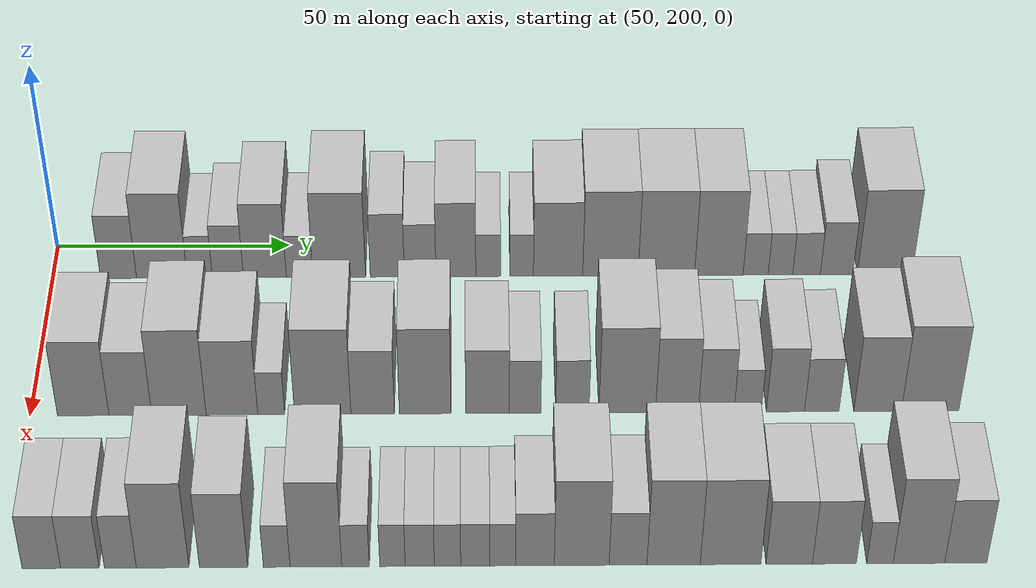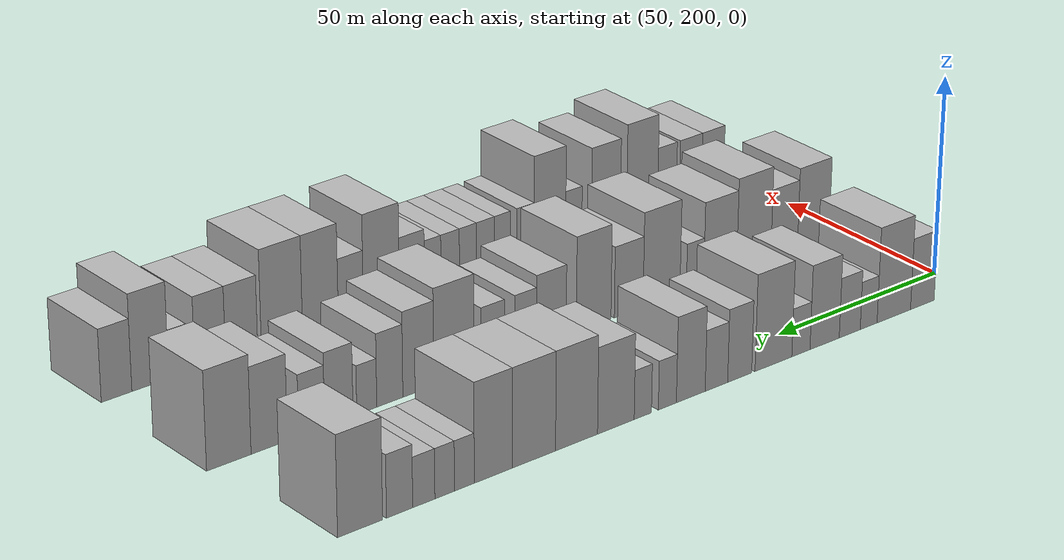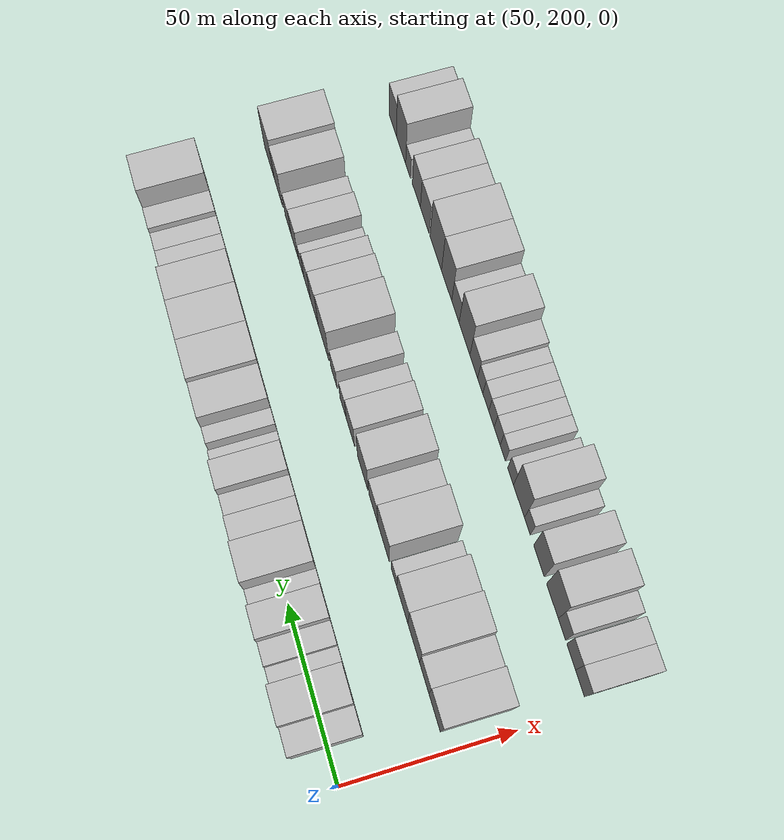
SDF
<sdf version="1.6">
 <world name="default">
  <model name="building_66">
   <static>1</static>
   <pose>50.0000 214.0781 0 0.000000 0.000000 0.000000</pose>
   <link name="link">
    <pose>0 0 9.00 0 0 0</pose>
    <collision name="collision"><geometry><box><size>20.0000 7.6714 18.0000</size></box></geometry></collision>
    <visual name="visual">
     <cast_shadows>0</cast_shadows>
     <geometry><box><size>20.0000 7.6714 18.0000</size></box></geometry>
     <material>
      <script>
       <uri>model://HANNAS_wall/materials/scripts</uri>
       <uri>model://HANNAS_wall/materials/textures</uri>
       <name>vrc/HANNAS_wall</name>
      </script>
     </material>
    </visual>
   </link>
  </model>
  <model name="building_67">
   <static>1</static>
   <pose>50.0000 223.2891 0 0.000000 0.000000 0.000000</pose>
   <link name="link">
    <pose>0 0 12.00 0 0 0</pose>
    <collision name="collision"><geometry><box><size>20.0000 10.7506 24.0000</size></box></geometry></collision>
    <visual name="visual">
     <cast_shadows>0</cast_shadows>
     <geometry><box><size>20.0000 10.7506 24.0000</size></box></geometry>
     <material>
      <script>
       <uri>model://HANNAS_wall/materials/scripts</uri>
       <uri>model://HANNAS_wall/materials/textures</uri>
       <name>vrc/HANNAS_wall</name>
      </script>
     </material>
    </visual>
   </link>
  </model>
  <model name="building_68">
   <static>1</static>
   <pose>50.0000 231.3365 0 0.000000 0.000000 0.000000</pose>
   <link name="link">
    <pose>0 0 6.00 0 0 0</pose>
    <collision name="collision"><geometry><box><size>20.0000 5.3441 12.0000</size></box></geometry></collision>
    <visual name="visual">
     <cast_shadows>0</cast_shadows>
     <geometry><box><size>20.0000 5.3441 12.0000</size></box></geometry>
     <material>
      <script>
       <uri>model://HANNAS_wall/materials/scripts</uri>
       <uri>model://HANNAS_wall/materials/textures</uri>
       <name>vrc/HANNAS_wall</name>
      </script>
     </material>
    </visual>
   </link>
  </model>
  <model name="building_69">
   <static>1</static>
   <pose>50.0000 237.3192 0 0.000000 0.000000 0.000000</pose>
   <link name="link">
    <pose>0 0 7.50 0 0 0</pose>
    <collision name="collision"><geometry><box><size>20.0000 6.6214 15.0000</size></box></geometry></collision>
    <visual name="visual">
     <cast_shadows>0</cast_shadows>
     <geometry><box><size>20.0000 6.6214 15.0000</size></box></geometry>
     <material>
      <script>
       <uri>model://HANNAS_wall/materials/scripts</uri>
       <uri>model://HANNAS_wall/materials/textures</uri>
       <name>vrc/HANNAS_wall</name>
      </script>
     </material>
    </visual>
   </link>
  </model>
  <model name="building_70">
   <static>1</static>
   <pose>50.0000 245.1917 0 0.000000 0.000000 0.000000</pose>
   <link name="link">
    <pose>0 0 10.50 0 0 0</pose>
    <collision name="collision"><geometry><box><size>20.0000 9.1236 21.0000</size></box></geometry></collision>
    <visual name="visual">
     <cast_shadows>0</cast_shadows>
     <geometry><box><size>20.0000 9.1236 21.0000</size></box></geometry>
     <material>
      <script>
       <uri>model://HANNAS_wall/materials/scripts</uri>
       <uri>model://HANNAS_wall/materials/textures</uri>
       <name>vrc/HANNAS_wall</name>
      </script>
     </material>
    </visual>
   </link>
  </model>
  <model name="building_71">
   <static>1</static>
   <pose>50.0000 252.5566 0 0.000000 0.000000 0.000000</pose>
   <link name="link">
    <pose>0 0 6.00 0 0 0</pose>
    <collision name="collision"><geometry><box><size>20.0000 5.6062 12.0000</size></box></geometry></collision>
    <visual name="visual">
     <cast_shadows>0</cast_shadows>
     <geometry><box><size>20.0000 5.6062 12.0000</size></box></geometry>
     <material>
      <script>
       <uri>model://HANNAS_wall/materials/scripts</uri>
       <uri>model://HANNAS_wall/materials/textures</uri>
       <name>vrc/HANNAS_wall</name>
      </script>
     </material>
    </visual>
   </link>
  </model>
  <model name="building_72">
   <static>1</static>
   <pose>50.0000 260.9833 0 0.000000 0.000000 0.000000</pose>
   <link name="link">
    <pose>0 0 12.00 0 0 0</pose>
    <collision name="collision"><geometry><box><size>20.0000 11.2474 24.0000</size></box></geometry></collision>
    <visual name="visual">
     <cast_shadows>0</cast_shadows>
     <geometry><box><size>20.0000 11.2474 24.0000</size></box></geometry>
     <material>
      <script>
       <uri>model://HANNAS_wall/materials/scripts</uri>
       <uri>model://HANNAS_wall/materials/textures</uri>
       <name>vrc/HANNAS_wall</name>
      </script>
     </material>
    </visual>
   </link>
  </model>
  <model name="building_73">
   <static>1</static>
   <pose>50.0000 271.2235 0 0.000000 0.000000 0.000000</pose>
   <link name="link">
    <pose>0 0 9.00 0 0 0</pose>
    <collision name="collision"><geometry><box><size>20.0000 7.2329 18.0000</size></box></geometry></collision>
    <visual name="visual">
     <cast_shadows>0</cast_shadows>
     <geometry><box><size>20.0000 7.2329 18.0000</size></box></geometry>
     <material>
      <script>
       <uri>model://HANNAS_wall/materials/scripts</uri>
       <uri>model://HANNAS_wall/materials/textures</uri>
       <name>vrc/HANNAS_wall</name>
      </script>
     </material>
    </visual>
   </link>
  </model>
  <model name="building_74">
   <static>1</static>
   <pose>50.0000 278.1949 0 0.000000 0.000000 0.000000</pose>
   <link name="link">
    <pose>0 0 7.50 0 0 0</pose>
    <collision name="collision"><geometry><box><size>20.0000 6.7098 15.0000</size></box></geometry></collision>
    <visual name="visual">
     <cast_shadows>0</cast_shadows>
     <geometry><box><size>20.0000 6.7098 15.0000</size></box></geometry>
     <material>
      <script>
       <uri>model://HANNAS_wall/materials/scripts</uri>
       <uri>model://HANNAS_wall/materials/textures</uri>
       <name>vrc/HANNAS_wall</name>
      </script>
     </material>
    </visual>
   </link>
  </model>
  <model name="building_75">
   <static>1</static>
   <pose>50.0000 285.7951 0 0.000000 0.000000 0.000000</pose>
   <link name="link">
    <pose>0 0 10.50 0 0 0</pose>
    <collision name="collision"><geometry><box><size>20.0000 8.4907 21.0000</size></box></geometry></collision>
    <visual name="visual">
     <cast_shadows>0</cast_shadows>
     <geometry><box><size>20.0000 8.4907 21.0000</size></box></geometry>
     <material>
      <script>
       <uri>model://HANNAS_wall/materials/scripts</uri>
       <uri>model://HANNAS_wall/materials/textures</uri>
       <name>vrc/HANNAS_wall</name>
      </script>
     </material>
    </visual>
   </link>
  </model>
  <model name="building_76">
   <static>1</static>
   <pose>50.0000 292.6729 0 0.000000 0.000000 0.000000</pose>
   <link name="link">
    <pose>0 0 6.00 0 0 0</pose>
    <collision name="collision"><geometry><box><size>20.0000 5.2649 12.0000</size></box></geometry></collision>
    <visual name="visual">
     <cast_shadows>0</cast_shadows>
     <geometry><box><size>20.0000 5.2649 12.0000</size></box></geometry>
     <material>
      <script>
       <uri>model://HANNAS_wall/materials/scripts</uri>
       <uri>model://HANNAS_wall/materials/textures</uri>
       <name>vrc/HANNAS_wall</name>
      </script>
     </material>
    </visual>
   </link>
  </model>
  <model name="building_77">
   <static>1</static>
   <pose>50.0000 299.8069 0 0.000000 0.000000 0.000000</pose>
   <link name="link">
    <pose>0 0 6.00 0 0 0</pose>
    <collision name="collision"><geometry><box><size>20.0000 5.0031 12.0000</size></box></geometry></collision>
    <visual name="visual">
     <cast_shadows>0</cast_shadows>
     <geometry><box><size>20.0000 5.0031 12.0000</size></box></geometry>
     <material>
      <script>
       <uri>model://HANNAS_wall/materials/scripts</uri>
       <uri>model://HANNAS_wall/materials/textures</uri>
       <name>vrc/HANNAS_wall</name>
      </script>
     </material>
    </visual>
   </link>
  </model>
  <model name="building_78">
   <static>1</static>
   <pose>50.0000 307.5530 0 0.000000 0.000000 0.000000</pose>
   <link name="link">
    <pose>0 0 10.50 0 0 0</pose>
    <collision name="collision"><geometry><box><size>20.0000 10.4891 21.0000</size></box></geometry></collision>
    <visual name="visual">
     <cast_shadows>0</cast_shadows>
     <geometry><box><size>20.0000 10.4891 21.0000</size></box></geometry>
     <material>
      <script>
       <uri>model://HANNAS_wall/materials/scripts</uri>
       <uri>model://HANNAS_wall/materials/textures</uri>
       <name>vrc/HANNAS_wall</name>
      </script>
     </material>
    </visual>
   </link>
  </model>
  <model name="building_79">
   <static>1</static>
   <pose>50.0000 318.7079 0 0.000000 0.000000 0.000000</pose>
   <link name="link">
    <pose>0 0 12.00 0 0 0</pose>
    <collision name="collision"><geometry><box><size>20.0000 11.8206 24.0000</size></box></geometry></collision>
    <visual name="visual">
     <cast_shadows>0</cast_shadows>
     <geometry><box><size>20.0000 11.8206 24.0000</size></box></geometry>
     <material>
      <script>
       <uri>model://HANNAS_wall/materials/scripts</uri>
       <uri>model://HANNAS_wall/materials/textures</uri>
       <name>vrc/HANNAS_wall</name>
      </script>
     </material>
    </visual>
   </link>
  </model>
  <model name="building_80">
   <static>1</static>
   <pose>50.0000 330.6133 0 0.000000 0.000000 0.000000</pose>
   <link name="link">
    <pose>0 0 12.00 0 0 0</pose>
    <collision name="collision"><geometry><box><size>20.0000 11.9901 24.0000</size></box></geometry></collision>
    <visual name="visual">
     <cast_shadows>0</cast_shadows>
     <geometry><box><size>20.0000 11.9901 24.0000</size></box></geometry>
     <material>
      <script>
       <uri>model://HANNAS_wall/materials/scripts</uri>
       <uri>model://HANNAS_wall/materials/textures</uri>
       <name>vrc/HANNAS_wall</name>
      </script>
     </material>
    </visual>
   </link>
  </model>
  <model name="building_81">
   <static>1</static>
   <pose>50.0000 341.7887 0 0.000000 0.000000 0.000000</pose>
   <link name="link">
    <pose>0 0 12.00 0 0 0</pose>
    <collision name="collision"><geometry><box><size>20.0000 10.3607 24.0000</size></box></geometry></collision>
    <visual name="visual">
     <cast_shadows>0</cast_shadows>
     <geometry><box><size>20.0000 10.3607 24.0000</size></box></geometry>
     <material>
      <script>
       <uri>model://HANNAS_wall/materials/scripts</uri>
       <uri>model://HANNAS_wall/materials/textures</uri>
       <name>vrc/HANNAS_wall</name>
      </script>
     </material>
    </visual>
   </link>
  </model>
  <model name="building_82">
   <static>1</static>
   <pose>50.0000 349.6413 0 0.000000 0.000000 0.000000</pose>
   <link name="link">
    <pose>0 0 6.00 0 0 0</pose>
    <collision name="collision"><geometry><box><size>20.0000 5.3445 12.0000</size></box></geometry></collision>
    <visual name="visual">
     <cast_shadows>0</cast_shadows>
     <geometry><box><size>20.0000 5.3445 12.0000</size></box></geometry>
     <material>
      <script>
       <uri>model://HANNAS_wall/materials/scripts</uri>
       <uri>model://HANNAS_wall/materials/textures</uri>
       <name>vrc/HANNAS_wall</name>
      </script>
     </material>
    </visual>
   </link>
  </model>
  <model name="building_83">
   <static>1</static>
   <pose>50.0000 354.9262 0 0.000000 0.000000 0.000000</pose>
   <link name="link">
    <pose>0 0 6.00 0 0 0</pose>
    <collision name="collision"><geometry><box><size>20.0000 5.2252 12.0000</size></box></geometry></collision>
    <visual name="visual">
     <cast_shadows>0</cast_shadows>
     <geometry><box><size>20.0000 5.2252 12.0000</size></box></geometry>
     <material>
      <script>
       <uri>model://HANNAS_wall/materials/scripts</uri>
       <uri>model://HANNAS_wall/materials/textures</uri>
       <name>vrc/HANNAS_wall</name>
      </script>
     </material>
    </visual>
   </link>
  </model>
  <model name="building_84">
   <static>1</static>
   <pose>50.0000 360.4832 0 0.000000 0.000000 0.000000</pose>
   <link name="link">
    <pose>0 0 6.00 0 0 0</pose>
    <collision name="collision"><geometry><box><size>20.0000 5.8889 12.0000</size></box></geometry></collision>
    <visual name="visual">
     <cast_shadows>0</cast_shadows>
     <geometry><box><size>20.0000 5.8889 12.0000</size></box></geometry>
     <material>
      <script>
       <uri>model://HANNAS_wall/materials/scripts</uri>
       <uri>model://HANNAS_wall/materials/textures</uri>
       <name>vrc/HANNAS_wall</name>
      </script>
     </material>
    </visual>
   </link>
  </model>
  <model name="building_85">
   <static>1</static>
   <pose>50.0000 366.8766 0 0.000000 0.000000 0.000000</pose>
   <link name="link">
    <pose>0 0 7.50 0 0 0</pose>
    <collision name="collision"><geometry><box><size>20.0000 6.8979 15.0000</size></box></geometry></collision>
    <visual name="visual">
     <cast_shadows>0</cast_shadows>
     <geometry><box><size>20.0000 6.8979 15.0000</size></box></geometry>
     <material>
      <script>
       <uri>model://HANNAS_wall/materials/scripts</uri>
       <uri>model://HANNAS_wall/materials/textures</uri>
       <name>vrc/HANNAS_wall</name>
      </script>
     </material>
    </visual>
   </link>
  </model>
  <model name="building_86">
   <static>1</static>
   <pose>50.0000 377.1571 0 0.000000 0.000000 0.000000</pose>
   <link name="link">
    <pose>0 0 12.00 0 0 0</pose>
    <collision name="collision"><geometry><box><size>20.0000 11.6630 24.0000</size></box></geometry></collision>
    <visual name="visual">
     <cast_shadows>0</cast_shadows>
     <geometry><box><size>20.0000 11.6630 24.0000</size></box></geometry>
     <material>
      <script>
       <uri>model://HANNAS_wall/materials/scripts</uri>
       <uri>model://HANNAS_wall/materials/textures</uri>
       <name>vrc/HANNAS_wall</name>
      </script>
     </material>
    </visual>
   </link>
  </model>
  <model name="building_149">
   <static>1</static>
   <pose>90.0000 210.7313 0 0.000000 0.000000 0.000000</pose>
   <link name="link">
    <pose>0 0 10.50 0 0 0</pose>
    <collision name="collision"><geometry><box><size>20.0000 10.3933 21.0000</size></box></geometry></collision>
    <visual name="visual">
     <cast_shadows>0</cast_shadows>
     <geometry><box><size>20.0000 10.3933 21.0000</size></box></geometry>
     <material>
      <script>
       <uri>model://HANNAS_wall/materials/scripts</uri>
       <uri>model://HANNAS_wall/materials/textures</uri>
       <name>vrc/HANNAS_wall</name>
      </script>
     </material>
    </visual>
   </link>
  </model>
  <model name="building_150">
   <static>1</static>
   <pose>90.0000 220.2506 0 0.000000 0.000000 0.000000</pose>
   <link name="link">
    <pose>0 0 9.00 0 0 0</pose>
    <collision name="collision"><geometry><box><size>20.0000 8.6453 18.0000</size></box></geometry></collision>
    <visual name="visual">
     <cast_shadows>0</cast_shadows>
     <geometry><box><size>20.0000 8.6453 18.0000</size></box></geometry>
     <material>
      <script>
       <uri>model://HANNAS_wall/materials/scripts</uri>
       <uri>model://HANNAS_wall/materials/textures</uri>
       <name>vrc/HANNAS_wall</name>
      </script>
     </material>
    </visual>
   </link>
  </model>
  <model name="building_151">
   <static>1</static>
   <pose>90.0000 230.0540 0 0.000000 0.000000 0.000000</pose>
   <link name="link">
    <pose>0 0 12.00 0 0 0</pose>
    <collision name="collision"><geometry><box><size>20.0000 10.9616 24.0000</size></box></geometry></collision>
    <visual name="visual">
     <cast_shadows>0</cast_shadows>
     <geometry><box><size>20.0000 10.9616 24.0000</size></box></geometry>
     <material>
      <script>
       <uri>model://HANNAS_wall/materials/scripts</uri>
       <uri>model://HANNAS_wall/materials/textures</uri>
       <name>vrc/HANNAS_wall</name>
      </script>
     </material>
    </visual>
   </link>
  </model>
  <model name="building_152">
   <static>1</static>
   <pose>90.0000 240.7411 0 0.000000 0.000000 0.000000</pose>
   <link name="link">
    <pose>0 0 10.50 0 0 0</pose>
    <collision name="collision"><geometry><box><size>20.0000 10.4127 21.0000</size></box></geometry></collision>
    <visual name="visual">
     <cast_shadows>0</cast_shadows>
     <geometry><box><size>20.0000 10.4127 21.0000</size></box></geometry>
     <material>
      <script>
       <uri>model://HANNAS_wall/materials/scripts</uri>
       <uri>model://HANNAS_wall/materials/textures</uri>
       <name>vrc/HANNAS_wall</name>
      </script>
     </material>
    </visual>
   </link>
  </model>
  <model name="building_153">
   <static>1</static>
   <pose>90.0000 248.6565 0 0.000000 0.000000 0.000000</pose>
   <link name="link">
    <pose>0 0 6.00 0 0 0</pose>
    <collision name="collision"><geometry><box><size>20.0000 5.4181 12.0000</size></box></geometry></collision>
    <visual name="visual">
     <cast_shadows>0</cast_shadows>
     <geometry><box><size>20.0000 5.4181 12.0000</size></box></geometry>
     <material>
      <script>
       <uri>model://HANNAS_wall/materials/scripts</uri>
       <uri>model://HANNAS_wall/materials/textures</uri>
       <name>vrc/HANNAS_wall</name>
      </script>
     </material>
    </visual>
   </link>
  </model>
  <model name="building_154">
   <static>1</static>
   <pose>90.0000 259.0512 0 0.000000 0.000000 0.000000</pose>
   <link name="link">
    <pose>0 0 12.00 0 0 0</pose>
    <collision name="collision"><geometry><box><size>20.0000 11.3712 24.0000</size></box></geometry></collision>
    <visual name="visual">
     <cast_shadows>0</cast_shadows>
     <geometry><box><size>20.0000 11.3712 24.0000</size></box></geometry>
     <material>
      <script>
       <uri>model://HANNAS_wall/materials/scripts</uri>
       <uri>model://HANNAS_wall/materials/textures</uri>
       <name>vrc/HANNAS_wall</name>
      </script>
     </material>
    </visual>
   </link>
  </model>
  <model name="building_155">
   <static>1</static>
   <pose>90.0000 269.1230 0 0.000000 0.000000 0.000000</pose>
   <link name="link">
    <pose>0 0 9.00 0 0 0</pose>
    <collision name="collision"><geometry><box><size>20.0000 8.7726 18.0000</size></box></geometry></collision>
    <visual name="visual">
     <cast_shadows>0</cast_shadows>
     <geometry><box><size>20.0000 8.7726 18.0000</size></box></geometry>
     <material>
      <script>
       <uri>model://HANNAS_wall/materials/scripts</uri>
       <uri>model://HANNAS_wall/materials/textures</uri>
       <name>vrc/HANNAS_wall</name>
      </script>
     </material>
    </visual>
   </link>
  </model>
  <model name="building_156">
   <static>1</static>
   <pose>90.0000 279.7191 0 0.000000 0.000000 0.000000</pose>
   <link name="link">
    <pose>0 0 12.00 0 0 0</pose>
    <collision name="collision"><geometry><box><size>20.0000 10.4196 24.0000</size></box></geometry></collision>
    <visual name="visual">
     <cast_shadows>0</cast_shadows>
     <geometry><box><size>20.0000 10.4196 24.0000</size></box></geometry>
     <material>
      <script>
       <uri>model://HANNAS_wall/materials/scripts</uri>
       <uri>model://HANNAS_wall/materials/textures</uri>
       <name>vrc/HANNAS_wall</name>
      </script>
     </material>
    </visual>
   </link>
  </model>
  <model name="building_157">
   <static>1</static>
   <pose>90.0000 292.3135 0 0.000000 0.000000 0.000000</pose>
   <link name="link">
    <pose>0 0 9.00 0 0 0</pose>
    <collision name="collision"><geometry><box><size>20.0000 8.7691 18.0000</size></box></geometry></collision>
    <visual name="visual">
     <cast_shadows>0</cast_shadows>
     <geometry><box><size>20.0000 8.7691 18.0000</size></box></geometry>
     <material>
      <script>
       <uri>model://HANNAS_wall/materials/scripts</uri>
       <uri>model://HANNAS_wall/materials/textures</uri>
       <name>vrc/HANNAS_wall</name>
      </script>
     </material>
    </visual>
   </link>
  </model>
  <model name="building_158">
   <static>1</static>
   <pose>90.0000 299.8860 0 0.000000 0.000000 0.000000</pose>
   <link name="link">
    <pose>0 0 7.50 0 0 0</pose>
    <collision name="collision"><geometry><box><size>20.0000 6.3760 15.0000</size></box></geometry></collision>
    <visual name="visual">
     <cast_shadows>0</cast_shadows>
     <geometry><box><size>20.0000 6.3760 15.0000</size></box></geometry>
     <material>
      <script>
       <uri>model://HANNAS_wall/materials/scripts</uri>
       <uri>model://HANNAS_wall/materials/textures</uri>
       <name>vrc/HANNAS_wall</name>
      </script>
     </material>
    </visual>
   </link>
  </model>
  <model name="building_159">
   <static>1</static>
   <pose>90.0000 309.4445 0 0.000000 0.000000 0.000000</pose>
   <link name="link">
    <pose>0 0 7.50 0 0 0</pose>
    <collision name="collision"><geometry><box><size>20.0000 6.7410 15.0000</size></box></geometry></collision>
    <visual name="visual">
     <cast_shadows>0</cast_shadows>
     <geometry><box><size>20.0000 6.7410 15.0000</size></box></geometry>
     <material>
      <script>
       <uri>model://HANNAS_wall/materials/scripts</uri>
       <uri>model://HANNAS_wall/materials/textures</uri>
       <name>vrc/HANNAS_wall</name>
      </script>
     </material>
    </visual>
   </link>
  </model>
  <model name="building_160">
   <static>1</static>
   <pose>90.0000 320.5334 0 0.000000 0.000000 0.000000</pose>
   <link name="link">
    <pose>0 0 12.00 0 0 0</pose>
    <collision name="collision"><geometry><box><size>20.0000 11.4367 24.0000</size></box></geometry></collision>
    <visual name="visual">
     <cast_shadows>0</cast_shadows>
     <geometry><box><size>20.0000 11.4367 24.0000</size></box></geometry>
     <material>
      <script>
       <uri>model://HANNAS_wall/materials/scripts</uri>
       <uri>model://HANNAS_wall/materials/textures</uri>
       <name>vrc/HANNAS_wall</name>
      </script>
     </material>
    </visual>
   </link>
  </model>
  <model name="building_161">
   <static>1</static>
   <pose>90.0000 330.5789 0 0.000000 0.000000 0.000000</pose>
   <link name="link">
    <pose>0 0 10.50 0 0 0</pose>
    <collision name="collision"><geometry><box><size>20.0000 8.6543 21.0000</size></box></geometry></collision>
    <visual name="visual">
     <cast_shadows>0</cast_shadows>
     <geometry><box><size>20.0000 8.6543 21.0000</size></box></geometry>
     <material>
      <script>
       <uri>model://HANNAS_wall/materials/scripts</uri>
       <uri>model://HANNAS_wall/materials/textures</uri>
       <name>vrc/HANNAS_wall</name>
      </script>
     </material>
    </visual>
   </link>
  </model>
  <model name="building_162">
   <static>1</static>
   <pose>90.0000 338.5224 0 0.000000 0.000000 0.000000</pose>
   <link name="link">
    <pose>0 0 9.00 0 0 0</pose>
    <collision name="collision"><geometry><box><size>20.0000 7.2326 18.0000</size></box></geometry></collision>
    <visual name="visual">
     <cast_shadows>0</cast_shadows>
     <geometry><box><size>20.0000 7.2326 18.0000</size></box></geometry>
     <material>
      <script>
       <uri>model://HANNAS_wall/materials/scripts</uri>
       <uri>model://HANNAS_wall/materials/textures</uri>
       <name>vrc/HANNAS_wall</name>
      </script>
     </material>
    </visual>
   </link>
  </model>
  <model name="building_163">
   <static>1</static>
   <pose>90.0000 344.8910 0 0.000000 0.000000 0.000000</pose>
   <link name="link">
    <pose>0 0 6.00 0 0 0</pose>
    <collision name="collision"><geometry><box><size>20.0000 5.5047 12.0000</size></box></geometry></collision>
    <visual name="visual">
     <cast_shadows>0</cast_shadows>
     <geometry><box><size>20.0000 5.5047 12.0000</size></box></geometry>
     <material>
      <script>
       <uri>model://HANNAS_wall/materials/scripts</uri>
       <uri>model://HANNAS_wall/materials/textures</uri>
       <name>vrc/HANNAS_wall</name>
      </script>
     </material>
    </visual>
   </link>
  </model>
  <model name="building_164">
   <static>1</static>
   <pose>90.0000 352.5043 0 0.000000 0.000000 0.000000</pose>
   <link name="link">
    <pose>0 0 9.00 0 0 0</pose>
    <collision name="collision"><geometry><box><size>20.0000 7.7218 18.0000</size></box></geometry></collision>
    <visual name="visual">
     <cast_shadows>0</cast_shadows>
     <geometry><box><size>20.0000 7.7218 18.0000</size></box></geometry>
     <material>
      <script>
       <uri>model://HANNAS_wall/materials/scripts</uri>
       <uri>model://HANNAS_wall/materials/textures</uri>
       <name>vrc/HANNAS_wall</name>
      </script>
     </material>
    </visual>
   </link>
  </model>
  <model name="building_165">
   <static>1</static>
   <pose>90.0000 359.8605 0 0.000000 0.000000 0.000000</pose>
   <link name="link">
    <pose>0 0 7.50 0 0 0</pose>
    <collision name="collision"><geometry><box><size>20.0000 6.9907 15.0000</size></box></geometry></collision>
    <visual name="visual">
     <cast_shadows>0</cast_shadows>
     <geometry><box><size>20.0000 6.9907 15.0000</size></box></geometry>
     <material>
      <script>
       <uri>model://HANNAS_wall/materials/scripts</uri>
       <uri>model://HANNAS_wall/materials/textures</uri>
       <name>vrc/HANNAS_wall</name>
      </script>
     </material>
    </visual>
   </link>
  </model>
  <model name="building_166">
   <static>1</static>
   <pose>90.0000 371.1662 0 0.000000 0.000000 0.000000</pose>
   <link name="link">
    <pose>0 0 10.50 0 0 0</pose>
    <collision name="collision"><geometry><box><size>20.0000 9.6207 21.0000</size></box></geometry></collision>
    <visual name="visual">
     <cast_shadows>0</cast_shadows>
     <geometry><box><size>20.0000 9.6207 21.0000</size></box></geometry>
     <material>
      <script>
       <uri>model://HANNAS_wall/materials/scripts</uri>
       <uri>model://HANNAS_wall/materials/textures</uri>
       <name>vrc/HANNAS_wall</name>
      </script>
     </material>
    </visual>
   </link>
  </model>
  <model name="building_167">
   <static>1</static>
   <pose>90.0000 381.7892 0 0.000000 0.000000 0.000000</pose>
   <link name="link">
    <pose>0 0 12.00 0 0 0</pose>
    <collision name="collision"><geometry><box><size>20.0000 11.6251 24.0000</size></box></geometry></collision>
    <visual name="visual">
     <cast_shadows>0</cast_shadows>
     <geometry><box><size>20.0000 11.6251 24.0000</size></box></geometry>
     <material>
      <script>
       <uri>model://HANNAS_wall/materials/scripts</uri>
       <uri>model://HANNAS_wall/materials/textures</uri>
       <name>vrc/HANNAS_wall</name>
      </script>
     </material>
    </visual>
   </link>
  </model>
  <model name="building_232">
   <static>1</static>
   <pose>130.0000 206.9181 0 0.000000 0.000000 0.000000</pose>
   <link name="link">
    <pose>0 0 7.50 0 0 0</pose>
    <collision name="collision"><geometry><box><size>20.0000 7.3622 15.0000</size></box></geometry></collision>
    <visual name="visual">
     <cast_shadows>0</cast_shadows>
     <geometry><box><size>20.0000 7.3622 15.0000</size></box></geometry>
     <material>
      <script>
       <uri>model://HANNAS_wall/materials/scripts</uri>
       <uri>model://HANNAS_wall/materials/textures</uri>
       <name>vrc/HANNAS_wall</name>
      </script>
     </material>
    </visual>
   </link>
  </model>
  <model name="building_233">
   <static>1</static>
   <pose>130.0000 214.2647 0 0.000000 0.000000 0.000000</pose>
   <link name="link">
    <pose>0 0 7.50 0 0 0</pose>
    <collision name="collision"><geometry><box><size>20.0000 7.3310 15.0000</size></box></geometry></collision>
    <visual name="visual">
     <cast_shadows>0</cast_shadows>
     <geometry><box><size>20.0000 7.3310 15.0000</size></box></geometry>
     <material>
      <script>
       <uri>model://HANNAS_wall/materials/scripts</uri>
       <uri>model://HANNAS_wall/materials/textures</uri>
       <name>vrc/HANNAS_wall</name>
      </script>
     </material>
    </visual>
   </link>
  </model>
  <model name="building_234">
   <static>1</static>
   <pose>130.0000 221.9835 0 0.000000 0.000000 0.000000</pose>
   <link name="link">
    <pose>0 0 7.50 0 0 0</pose>
    <collision name="collision"><geometry><box><size>20.0000 6.1065 15.0000</size></box></geometry></collision>
    <visual name="visual">
     <cast_shadows>0</cast_shadows>
     <geometry><box><size>20.0000 6.1065 15.0000</size></box></geometry>
     <material>
      <script>
       <uri>model://HANNAS_wall/materials/scripts</uri>
       <uri>model://HANNAS_wall/materials/textures</uri>
       <name>vrc/HANNAS_wall</name>
      </script>
     </material>
    </visual>
   </link>
  </model>
  <model name="building_235">
   <static>1</static>
   <pose>130.0000 230.0481 0 0.000000 0.000000 0.000000</pose>
   <link name="link">
    <pose>0 0 12.00 0 0 0</pose>
    <collision name="collision"><geometry><box><size>20.0000 10.0227 24.0000</size></box></geometry></collision>
    <visual name="visual">
     <cast_shadows>0</cast_shadows>
     <geometry><box><size>20.0000 10.0227 24.0000</size></box></geometry>
     <material>
      <script>
       <uri>model://HANNAS_wall/materials/scripts</uri>
       <uri>model://HANNAS_wall/materials/textures</uri>
       <name>vrc/HANNAS_wall</name>
      </script>
     </material>
    </visual>
   </link>
  </model>
  <model name="building_236">
   <static>1</static>
   <pose>130.0000 241.6732 0 0.000000 0.000000 0.000000</pose>
   <link name="link">
    <pose>0 0 10.50 0 0 0</pose>
    <collision name="collision"><geometry><box><size>20.0000 9.2276 21.0000</size></box></geometry></collision>
    <visual name="visual">
     <cast_shadows>0</cast_shadows>
     <geometry><box><size>20.0000 9.2276 21.0000</size></box></geometry>
     <material>
      <script>
       <uri>model://HANNAS_wall/materials/scripts</uri>
       <uri>model://HANNAS_wall/materials/textures</uri>
       <name>vrc/HANNAS_wall</name>
      </script>
     </material>
    </visual>
   </link>
  </model>
  <model name="building_237">
   <static>1</static>
   <pose>130.0000 251.8338 0 0.000000 0.000000 0.000000</pose>
   <link name="link">
    <pose>0 0 6.00 0 0 0</pose>
    <collision name="collision"><geometry><box><size>20.0000 5.0935 12.0000</size></box></geometry></collision>
    <visual name="visual">
     <cast_shadows>0</cast_shadows>
     <geometry><box><size>20.0000 5.0935 12.0000</size></box></geometry>
     <material>
      <script>
       <uri>model://HANNAS_wall/materials/scripts</uri>
       <uri>model://HANNAS_wall/materials/textures</uri>
       <name>vrc/HANNAS_wall</name>
      </script>
     </material>
    </visual>
   </link>
  </model>
  <model name="building_238">
   <static>1</static>
   <pose>130.0000 259.3157 0 0.000000 0.000000 0.000000</pose>
   <link name="link">
    <pose>0 0 12.00 0 0 0</pose>
    <collision name="collision"><geometry><box><size>20.0000 9.8702 24.0000</size></box></geometry></collision>
    <visual name="visual">
     <cast_shadows>0</cast_shadows>
     <geometry><box><size>20.0000 9.8702 24.0000</size></box></geometry>
     <material>
      <script>
       <uri>model://HANNAS_wall/materials/scripts</uri>
       <uri>model://HANNAS_wall/materials/textures</uri>
       <name>vrc/HANNAS_wall</name>
      </script>
     </material>
    </visual>
   </link>
  </model>
  <model name="building_239">
   <static>1</static>
   <pose>130.0000 266.8800 0 0.000000 0.000000 0.000000</pose>
   <link name="link">
    <pose>0 0 6.00 0 0 0</pose>
    <collision name="collision"><geometry><box><size>20.0000 5.2584 12.0000</size></box></geometry></collision>
    <visual name="visual">
     <cast_shadows>0</cast_shadows>
     <geometry><box><size>20.0000 5.2584 12.0000</size></box></geometry>
     <material>
      <script>
       <uri>model://HANNAS_wall/materials/scripts</uri>
       <uri>model://HANNAS_wall/materials/textures</uri>
       <name>vrc/HANNAS_wall</name>
      </script>
     </material>
    </visual>
   </link>
  </model>
  <model name="building_240">
   <static>1</static>
   <pose>130.0000 273.9326 0 0.000000 0.000000 0.000000</pose>
   <link name="link">
    <pose>0 0 6.00 0 0 0</pose>
    <collision name="collision"><geometry><box><size>20.0000 4.8469 12.0000</size></box></geometry></collision>
    <visual name="visual">
     <cast_shadows>0</cast_shadows>
     <geometry><box><size>20.0000 4.8469 12.0000</size></box></geometry>
     <material>
      <script>
       <uri>model://HANNAS_wall/materials/scripts</uri>
       <uri>model://HANNAS_wall/materials/textures</uri>
       <name>vrc/HANNAS_wall</name>
      </script>
     </material>
    </visual>
   </link>
  </model>
  <model name="building_241">
   <static>1</static>
   <pose>130.0000 279.1417 0 0.000000 0.000000 0.000000</pose>
   <link name="link">
    <pose>0 0 6.00 0 0 0</pose>
    <collision name="collision"><geometry><box><size>20.0000 5.5712 12.0000</size></box></geometry></collision>
    <visual name="visual">
     <cast_shadows>0</cast_shadows>
     <geometry><box><size>20.0000 5.5712 12.0000</size></box></geometry>
     <material>
      <script>
       <uri>model://HANNAS_wall/materials/scripts</uri>
       <uri>model://HANNAS_wall/materials/textures</uri>
       <name>vrc/HANNAS_wall</name>
      </script>
     </material>
    </visual>
   </link>
  </model>
  <model name="building_242">
   <static>1</static>
   <pose>130.0000 284.4559 0 0.000000 0.000000 0.000000</pose>
   <link name="link">
    <pose>0 0 6.00 0 0 0</pose>
    <collision name="collision"><geometry><box><size>20.0000 5.0572 12.0000</size></box></geometry></collision>
    <visual name="visual">
     <cast_shadows>0</cast_shadows>
     <geometry><box><size>20.0000 5.0572 12.0000</size></box></geometry>
     <material>
      <script>
       <uri>model://HANNAS_wall/materials/scripts</uri>
       <uri>model://HANNAS_wall/materials/textures</uri>
       <name>vrc/HANNAS_wall</name>
      </script>
     </material>
    </visual>
   </link>
  </model>
  <model name="building_243">
   <static>1</static>
   <pose>130.0000 289.7537 0 0.000000 0.000000 0.000000</pose>
   <link name="link">
    <pose>0 0 6.00 0 0 0</pose>
    <collision name="collision"><geometry><box><size>20.0000 5.5385 12.0000</size></box></geometry></collision>
    <visual name="visual">
     <cast_shadows>0</cast_shadows>
     <geometry><box><size>20.0000 5.5385 12.0000</size></box></geometry>
     <material>
      <script>
       <uri>model://HANNAS_wall/materials/scripts</uri>
       <uri>model://HANNAS_wall/materials/textures</uri>
       <name>vrc/HANNAS_wall</name>
      </script>
     </material>
    </visual>
   </link>
  </model>
  <model name="building_244">
   <static>1</static>
   <pose>130.0000 294.9778 0 0.000000 0.000000 0.000000</pose>
   <link name="link">
    <pose>0 0 6.00 0 0 0</pose>
    <collision name="collision"><geometry><box><size>20.0000 4.9098 12.0000</size></box></geometry></collision>
    <visual name="visual">
     <cast_shadows>0</cast_shadows>
     <geometry><box><size>20.0000 4.9098 12.0000</size></box></geometry>
     <material>
      <script>
       <uri>model://HANNAS_wall/materials/scripts</uri>
       <uri>model://HANNAS_wall/materials/textures</uri>
       <name>vrc/HANNAS_wall</name>
      </script>
     </material>
    </visual>
   </link>
  </model>
  <model name="building_245">
   <static>1</static>
   <pose>130.0000 301.1273 0 0.000000 0.000000 0.000000</pose>
   <link name="link">
    <pose>0 0 7.50 0 0 0</pose>
    <collision name="collision"><geometry><box><size>20.0000 7.3893 15.0000</size></box></geometry></collision>
    <visual name="visual">
     <cast_shadows>0</cast_shadows>
     <geometry><box><size>20.0000 7.3893 15.0000</size></box></geometry>
     <material>
      <script>
       <uri>model://HANNAS_wall/materials/scripts</uri>
       <uri>model://HANNAS_wall/materials/textures</uri>
       <name>vrc/HANNAS_wall</name>
      </script>
     </material>
    </visual>
   </link>
  </model>
  <model name="building_246">
   <static>1</static>
   <pose>130.0000 310.0747 0 0.000000 0.000000 0.000000</pose>
   <link name="link">
    <pose>0 0 12.00 0 0 0</pose>
    <collision name="collision"><geometry><box><size>20.0000 10.5055 24.0000</size></box></geometry></collision>
    <visual name="visual">
     <cast_shadows>0</cast_shadows>
     <geometry><box><size>20.0000 10.5055 24.0000</size></box></geometry>
     <material>
      <script>
       <uri>model://HANNAS_wall/materials/scripts</uri>
       <uri>model://HANNAS_wall/materials/textures</uri>
       <name>vrc/HANNAS_wall</name>
      </script>
     </material>
    </visual>
   </link>
  </model>
  <model name="building_247">
   <static>1</static>
   <pose>130.0000 318.9453 0 0.000000 0.000000 0.000000</pose>
   <link name="link">
    <pose>0 0 7.50 0 0 0</pose>
    <collision name="collision"><geometry><box><size>20.0000 7.2357 15.0000</size></box></geometry></collision>
    <visual name="visual">
     <cast_shadows>0</cast_shadows>
     <geometry><box><size>20.0000 7.2357 15.0000</size></box></geometry>
     <material>
      <script>
       <uri>model://HANNAS_wall/materials/scripts</uri>
       <uri>model://HANNAS_wall/materials/textures</uri>
       <name>vrc/HANNAS_wall</name>
      </script>
     </material>
    </visual>
   </link>
  </model>
  <model name="building_248">
   <static>1</static>
   <pose>130.0000 327.6570 0 0.000000 0.000000 0.000000</pose>
   <link name="link">
    <pose>0 0 12.00 0 0 0</pose>
    <collision name="collision"><geometry><box><size>20.0000 10.1877 24.0000</size></box></geometry></collision>
    <visual name="visual">
     <cast_shadows>0</cast_shadows>
     <geometry><box><size>20.0000 10.1877 24.0000</size></box></geometry>
     <material>
      <script>
       <uri>model://HANNAS_wall/materials/scripts</uri>
       <uri>model://HANNAS_wall/materials/textures</uri>
       <name>vrc/HANNAS_wall</name>
      </script>
     </material>
    </visual>
   </link>
  </model>
  <model name="building_249">
   <static>1</static>
   <pose>130.0000 338.5423 0 0.000000 0.000000 0.000000</pose>
   <link name="link">
    <pose>0 0 12.00 0 0 0</pose>
    <collision name="collision"><geometry><box><size>20.0000 11.5829 24.0000</size></box></geometry></collision>
    <visual name="visual">
     <cast_shadows>0</cast_shadows>
     <geometry><box><size>20.0000 11.5829 24.0000</size></box></geometry>
     <material>
      <script>
       <uri>model://HANNAS_wall/materials/scripts</uri>
       <uri>model://HANNAS_wall/materials/textures</uri>
       <name>vrc/HANNAS_wall</name>
      </script>
     </material>
    </visual>
   </link>
  </model>
  <model name="building_250">
   <static>1</static>
   <pose>130.0000 349.7718 0 0.000000 0.000000 0.000000</pose>
   <link name="link">
    <pose>0 0 9.00 0 0 0</pose>
    <collision name="collision"><geometry><box><size>20.0000 8.8762 18.0000</size></box></geometry></collision>
    <visual name="visual">
     <cast_shadows>0</cast_shadows>
     <geometry><box><size>20.0000 8.8762 18.0000</size></box></geometry>
     <material>
      <script>
       <uri>model://HANNAS_wall/materials/scripts</uri>
       <uri>model://HANNAS_wall/materials/textures</uri>
       <name>vrc/HANNAS_wall</name>
      </script>
     </material>
    </visual>
   </link>
  </model>
  <model name="building_251">
   <static>1</static>
   <pose>130.0000 358.4043 0 0.000000 0.000000 0.000000</pose>
   <link name="link">
    <pose>0 0 9.00 0 0 0</pose>
    <collision name="collision"><geometry><box><size>20.0000 8.3887 18.0000</size></box></geometry></collision>
    <visual name="visual">
     <cast_shadows>0</cast_shadows>
     <geometry><box><size>20.0000 8.3887 18.0000</size></box></geometry>
     <material>
      <script>
       <uri>model://HANNAS_wall/materials/scripts</uri>
       <uri>model://HANNAS_wall/materials/textures</uri>
       <name>vrc/HANNAS_wall</name>
      </script>
     </material>
    </visual>
   </link>
  </model>
  <model name="building_252">
   <static>1</static>
   <pose>130.0000 367.1305 0 0.000000 0.000000 0.000000</pose>
   <link name="link">
    <pose>0 0 6.00 0 0 0</pose>
    <collision name="collision"><geometry><box><size>20.0000 5.0638 12.0000</size></box></geometry></collision>
    <visual name="visual">
     <cast_shadows>0</cast_shadows>
     <geometry><box><size>20.0000 5.0638 12.0000</size></box></geometry>
     <material>
      <script>
       <uri>model://HANNAS_wall/materials/scripts</uri>
       <uri>model://HANNAS_wall/materials/textures</uri>
       <name>vrc/HANNAS_wall</name>
      </script>
     </material>
    </visual>
   </link>
  </model>
  <model name="building_253">
   <static>1</static>
   <pose>130.0000 374.5891 0 0.000000 0.000000 0.000000</pose>
   <link name="link">
    <pose>0 0 12.00 0 0 0</pose>
    <collision name="collision"><geometry><box><size>20.0000 9.8535 24.0000</size></box></geometry></collision>
    <visual name="visual">
     <cast_shadows>0</cast_shadows>
     <geometry><box><size>20.0000 9.8535 24.0000</size></box></geometry>
     <material>
      <script>
       <uri>model://HANNAS_wall/materials/scripts</uri>
       <uri>model://HANNAS_wall/materials/textures</uri>
       <name>vrc/HANNAS_wall</name>
      </script>
     </material>
    </visual>
   </link>
  </model>
  <model name="building_254">
   <static>1</static>
   <pose>130.0000 383.5612 0 0.000000 0.000000 0.000000</pose>
   <link name="link">
    <pose>0 0 9.00 0 0 0</pose>
    <collision name="collision"><geometry><box><size>20.0000 8.0906 18.0000</size></box></geometry></collision>
    <visual name="visual">
     <cast_shadows>0</cast_shadows>
     <geometry><box><size>20.0000 8.0906 18.0000</size></box></geometry>
     <material>
      <script>
       <uri>model://HANNAS_wall/materials/scripts</uri>
       <uri>model://HANNAS_wall/materials/textures</uri>
       <name>vrc/HANNAS_wall</name>
      </script>
     </material>
    </visual>
   </link>
  </model>
 </world>
</sdf>
